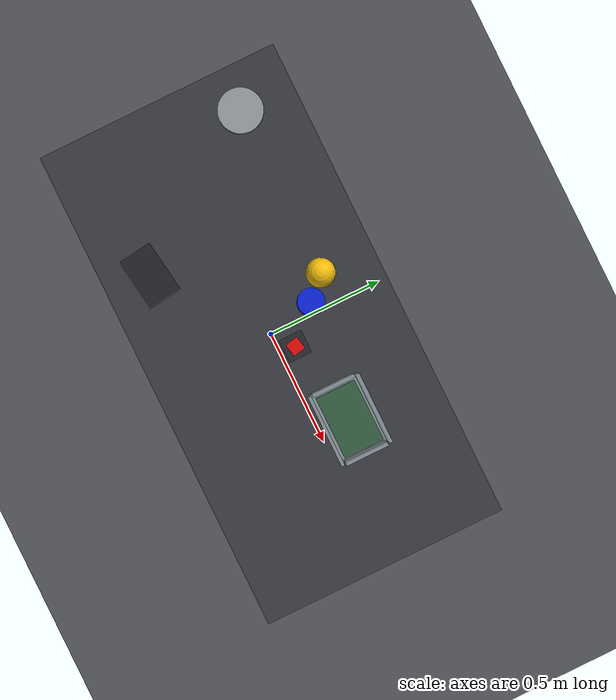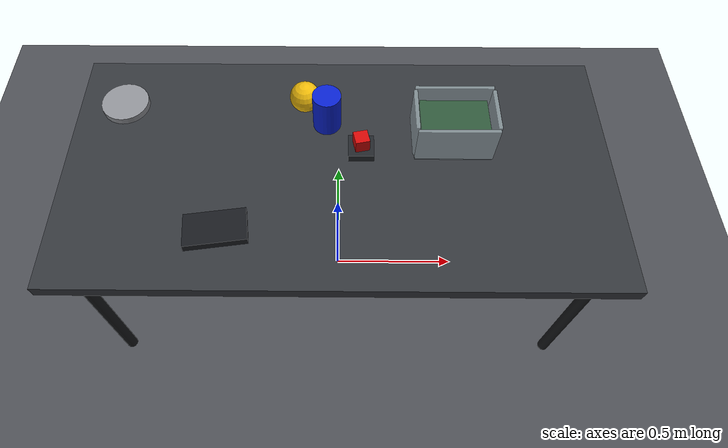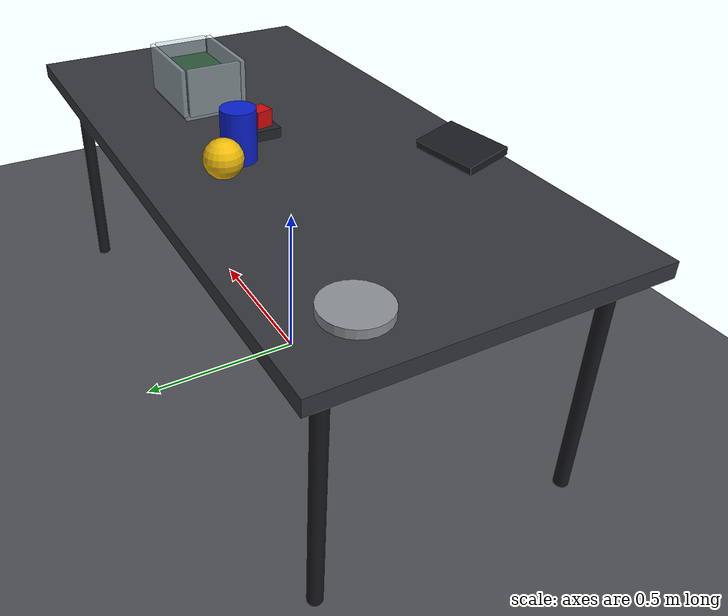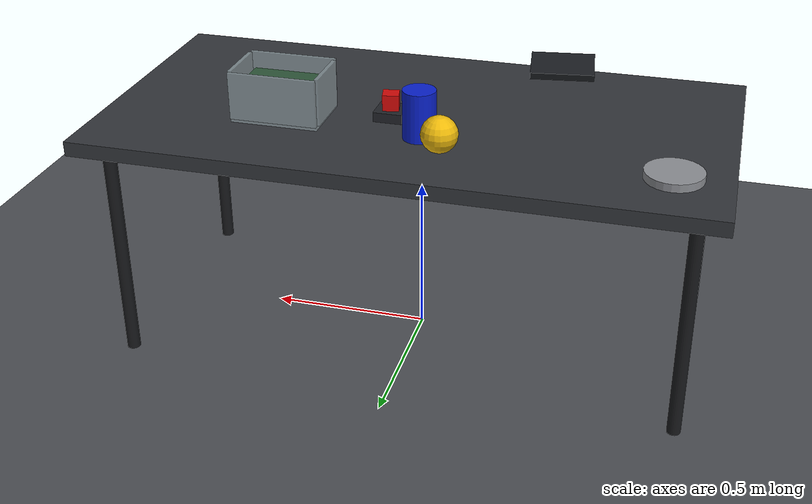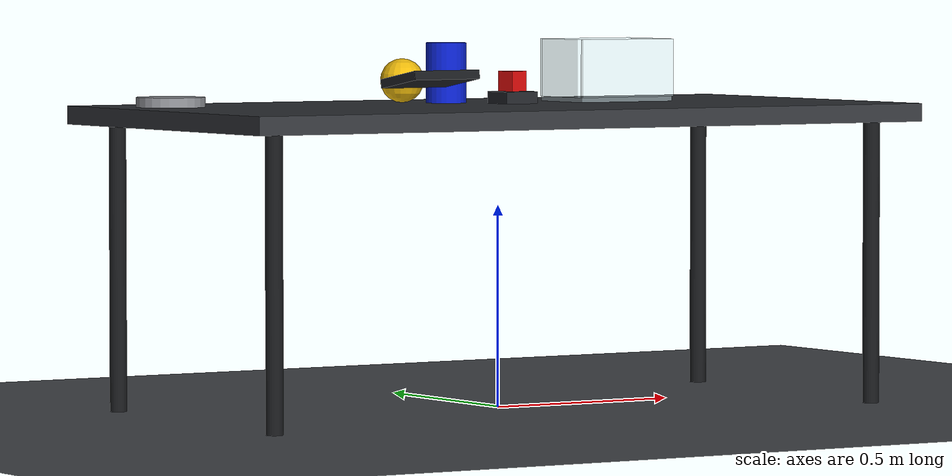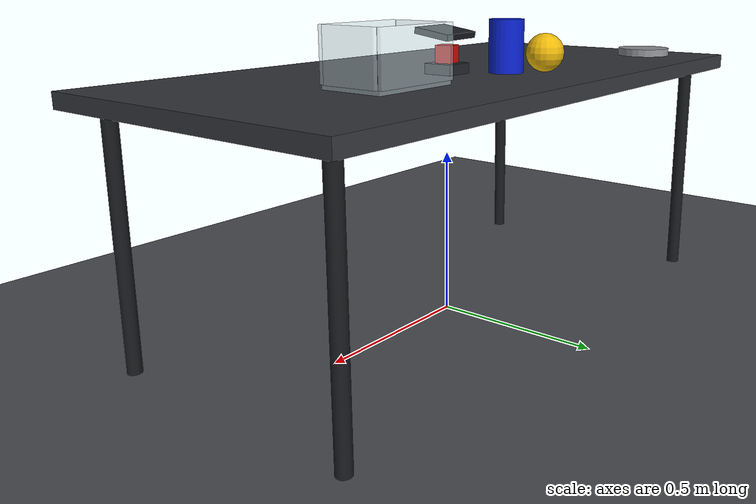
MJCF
<mujoco model="embodied_lab_tabletop">
  <compiler angle="radian" autolimits="true"/>
  <option timestep="0.002" gravity="0 0 -9.81"/>
  <visual>
    <headlight ambient="0.45 0.45 0.5" diffuse="0.65 0.65 0.7" specular="0.15 0.15 0.15"/>
  </visual>
  <statistic center="0.1 0 0.55" meansize="0.04" extent="2.66"/>
  <asset>
    <texture name="floor_tex" type="2d" builtin="checker" rgb1="0.26 0.27 0.29" rgb2="0.33 0.34 0.36" width="512" height="512"/>
    <material name="floor_mat" texture="floor_tex" texrepeat="6 6" reflectance="0.12" shininess="0.4"/>
  </asset>
  <worldbody>
    <light name="key_light" directional="true" pos="0 -1.2 2.4" dir="0.25 0.35 -0.9" diffuse="0.85 0.85 0.88"/>
    <light name="fill_light" directional="true" pos="-1.5 -1.5 1.8" dir="0.6 0.6 -0.5" diffuse="0.35 0.36 0.42"/>
    <geom name="room_floor" type="plane" size="5 5 0.05" pos="0 0 0.0" material="floor_mat"/>
    <!-- 实验桌：顶面高度 0.750m -->
    <geom name="table_top" type="box" pos="0 0 0.7275" size="0.9500 0.4750 0.0225" rgba="0.200 0.210 0.230 1" friction="0.6 0.008 0.0002"/>
    <geom name="table_leg_0" type="cylinder" pos="-0.8600 -0.3850 0.3525" size="0.0210 0.3525" rgba="0.09 0.095 0.105 1"/>
    <geom name="table_leg_1" type="cylinder" pos="0.8600 -0.3850 0.3525" size="0.0210 0.3525" rgba="0.09 0.095 0.105 1"/>
    <geom name="table_leg_2" type="cylinder" pos="-0.8600 0.3850 0.3525" size="0.0210 0.3525" rgba="0.09 0.095 0.105 1"/>
    <geom name="table_leg_3" type="cylinder" pos="0.8600 0.3850 0.3525" size="0.0210 0.3525" rgba="0.09 0.095 0.105 1"/>
    <geom name="Sample_Plinth" type="box" pos="0.080000 0.060000 0.765000" size="0.045000 0.045000 0.015000" rgba="0.130 0.140 0.160 1.0"/>
    <!-- Storage_Box -->
    <body name="Storage_Box" pos="0.400000 0.120000 0.750000">
      <geom name="Storage_Box_wall0" type="box" pos="0.000000 -0.095000 0.084500" size="0.135000 0.006000 0.072500" rgba="0.860 0.950 0.970 0.45"/>
      <geom name="Storage_Box_wall1" type="box" pos="0.000000 0.095000 0.084500" size="0.135000 0.006000 0.072500" rgba="0.860 0.950 0.970 0.45"/>
      <geom name="Storage_Box_wall2" type="box" pos="-0.135000 0.000000 0.084500" size="0.006000 0.083000 0.072500" rgba="0.860 0.950 0.970 0.45"/>
      <geom name="Storage_Box_wall3" type="box" pos="0.135000 0.000000 0.084500" size="0.006000 0.083000 0.072500" rgba="0.860 0.950 0.970 0.45"/>
      <geom name="Storage_Box_bottom" type="box" pos="0.000000 0.000000 0.006000" size="0.135000 0.095000 0.006000" rgba="0.860 0.950 0.970 0.45"/>
    </body>
    <geom name="Control_Panel_Deck" type="box" pos="-0.380000 -0.300000 0.825000" quat="0.99377 -0.08693 -0.00608 0.06948" size="0.100000 0.065000 0.011000" rgba="0.100 0.110 0.125 1.0"/>
    <geom name="Desk_Lamp_Base" type="cylinder" pos="-0.780000 0.260000 0.762000" size="0.085000 0.012000" rgba="0.550 0.560 0.580 1.0"/>
    <!-- 任务目标区：PutRedInBox -->
    <site name="goal_zone" type="box" pos="0.4000 0.1200 0.7940" size="0.1170 0.0770 0.0665" rgba="0.15 1.0 0.3 0.08" group="3"/>
    <geom name="goal_zone_vis" type="box" pos="0.4000 0.1200 0.7940" size="0.1170 0.0770 0.0665" rgba="0.15 0.9 0.25 0.10" contype="0" conaffinity="0" group="2"/>
    <body name="Prop_Cube_Red" pos="0.080000 0.060000 0.805500" quat="0.994524 0.000000 0.000000 0.104509">
      <freejoint name="Prop_Cube_Red_free"/>
      <geom name="Prop_Cube_Red" type="box" size="0.025000 0.025000 0.025000" mass="0.060" rgba="0.820 0.035 0.030 1.0" friction="0.7 0.01 0.0005" condim="4"/>
      <!-- dims: half=[0.025, 0.025, 0.025] | semantic: grasp_target -->
    </body>
    <body name="Prop_Cylinder_Blue" pos="-0.040000 0.180000 0.825500">
      <freejoint name="Prop_Cylinder_Blue_free"/>
      <geom name="Prop_Cylinder_Blue" type="cylinder" size="0.050000 0.075000" mass="0.180" rgba="0.035 0.130 0.800 1.0" friction="0.7 0.01 0.0005" condim="4"/>
      <!-- dims: r=0.05 h=0.15 | semantic: distractor -->
    </body>
    <body name="Prop_Sphere_Yellow" pos="-0.120000 0.260000 0.805500">
      <freejoint name="Prop_Sphere_Yellow_free"/>
      <geom name="Prop_Sphere_Yellow" type="sphere" size="0.055000" mass="0.100" rgba="0.920 0.720 0.040 1.0" friction="0.7 0.01 0.0005" condim="4"/>
      <!-- dims: r=0.055 | semantic: distractor -->
    </body>
  </worldbody>
  <actuator/>
</mujoco>
